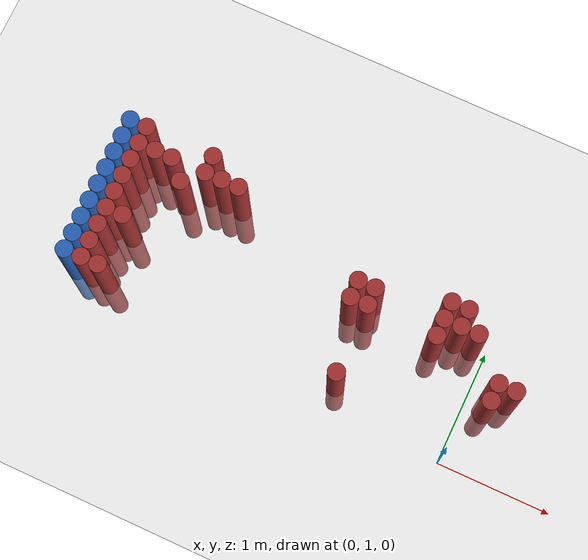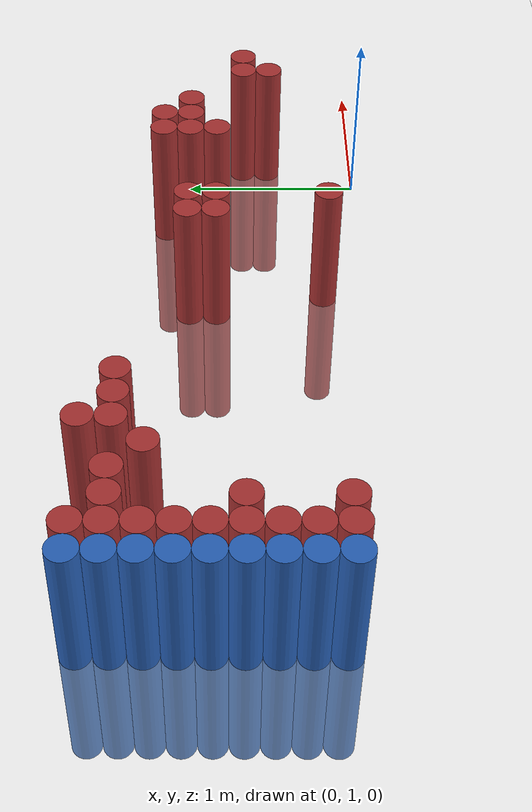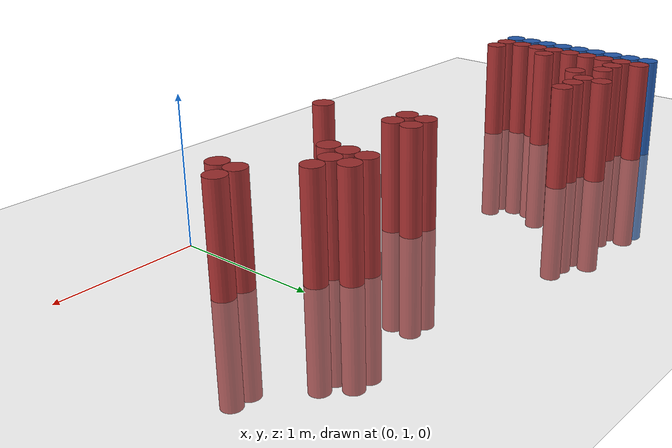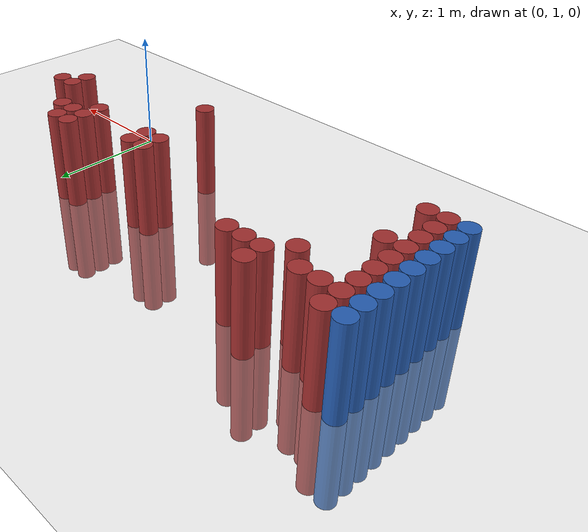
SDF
<sdf version="1.6">
 <world name="default">
  <model name="ground_plane">
   <static>1</static>
   <link name="link">
    <collision name="collision">
     <geometry><plane><normal>0 0 1</normal><size>100 100</size></plane></geometry>
     <surface><friction><ode><mu>100</mu><mu2>50</mu2></ode></friction></surface>
    </collision>
    <visual name="visual">
     <cast_shadows>0</cast_shadows>
     <geometry><plane><normal>0 0 1</normal><size>100 100</size></plane></geometry>
     <material>
      <script><uri>file://media/materials/scripts/gazebo.material</uri><name>Gazebo/Grey</name></script>
     </material>
    </visual>
   </link>
  </model>
  <model name="unit_cylinder_131">
   <static>1</static>
   <pose>-3.425000 1.225000 0.000000 0.000000 0.000000 0.000000</pose>
   <link name="link">
    <inertial>
     <mass>1</mass>
     <inertia><ixx>0.145833</ixx><ixy>0</ixy><ixz>0</ixz><iyy>0.145833</iyy><iyz>0</iyz><izz>0.125</izz></inertia>
    </inertial>
    <collision name="collision">
     <geometry><cylinder><radius>0.075000</radius><length>1.5</length></cylinder></geometry>
    </collision>
    <visual name="visual">
     <geometry><cylinder><radius>0.075000</radius><length>1.5</length></cylinder></geometry>
     <material>
      <ambient>0.152000 0.379000 0.720000 1</ambient>
      <diffuse>0.152000 0.379000 0.720000 1</diffuse>
     </material>
     <material>
      <script><name>Gazebo/Grey</name><uri>file://media/materials/scripts/gazebo.material</uri></script>
     </material>
    </visual>
   </link>
  </model>
  <model name="unit_cylinder_133">
   <static>1</static>
   <pose>-3.425000 1.375000 0.000000 0.000000 0.000000 0.000000</pose>
   <link name="link">
    <inertial>
     <mass>1</mass>
     <inertia><ixx>0.145833</ixx><ixy>0</ixy><ixz>0</ixz><iyy>0.145833</iyy><iyz>0</iyz><izz>0.125</izz></inertia>
    </inertial>
    <collision name="collision">
     <geometry><cylinder><radius>0.075000</radius><length>1.5</length></cylinder></geometry>
    </collision>
    <visual name="visual">
     <geometry><cylinder><radius>0.075000</radius><length>1.5</length></cylinder></geometry>
     <material>
      <ambient>0.152000 0.379000 0.720000 1</ambient>
      <diffuse>0.152000 0.379000 0.720000 1</diffuse>
     </material>
     <material>
      <script><name>Gazebo/Grey</name><uri>file://media/materials/scripts/gazebo.material</uri></script>
     </material>
    </visual>
   </link>
  </model>
  <model name="unit_cylinder_135">
   <static>1</static>
   <pose>-3.425000 1.525000 0.000000 0.000000 0.000000 0.000000</pose>
   <link name="link">
    <inertial>
     <mass>1</mass>
     <inertia><ixx>0.145833</ixx><ixy>0</ixy><ixz>0</ixz><iyy>0.145833</iyy><iyz>0</iyz><izz>0.125</izz></inertia>
    </inertial>
    <collision name="collision">
     <geometry><cylinder><radius>0.075000</radius><length>1.5</length></cylinder></geometry>
    </collision>
    <visual name="visual">
     <geometry><cylinder><radius>0.075000</radius><length>1.5</length></cylinder></geometry>
     <material>
      <ambient>0.152000 0.379000 0.720000 1</ambient>
      <diffuse>0.152000 0.379000 0.720000 1</diffuse>
     </material>
     <material>
      <script><name>Gazebo/Grey</name><uri>file://media/materials/scripts/gazebo.material</uri></script>
     </material>
    </visual>
   </link>
  </model>
  <model name="unit_cylinder_137">
   <static>1</static>
   <pose>-3.425000 1.675000 0.000000 0.000000 0.000000 0.000000</pose>
   <link name="link">
    <inertial>
     <mass>1</mass>
     <inertia><ixx>0.145833</ixx><ixy>0</ixy><ixz>0</ixz><iyy>0.145833</iyy><iyz>0</iyz><izz>0.125</izz></inertia>
    </inertial>
    <collision name="collision">
     <geometry><cylinder><radius>0.075000</radius><length>1.5</length></cylinder></geometry>
    </collision>
    <visual name="visual">
     <geometry><cylinder><radius>0.075000</radius><length>1.5</length></cylinder></geometry>
     <material>
      <ambient>0.152000 0.379000 0.720000 1</ambient>
      <diffuse>0.152000 0.379000 0.720000 1</diffuse>
     </material>
     <material>
      <script><name>Gazebo/Grey</name><uri>file://media/materials/scripts/gazebo.material</uri></script>
     </material>
    </visual>
   </link>
  </model>
  <model name="unit_cylinder_139">
   <static>1</static>
   <pose>-3.425000 1.825000 0.000000 0.000000 0.000000 0.000000</pose>
   <link name="link">
    <inertial>
     <mass>1</mass>
     <inertia><ixx>0.145833</ixx><ixy>0</ixy><ixz>0</ixz><iyy>0.145833</iyy><iyz>0</iyz><izz>0.125</izz></inertia>
    </inertial>
    <collision name="collision">
     <geometry><cylinder><radius>0.075000</radius><length>1.5</length></cylinder></geometry>
    </collision>
    <visual name="visual">
     <geometry><cylinder><radius>0.075000</radius><length>1.5</length></cylinder></geometry>
     <material>
      <ambient>0.152000 0.379000 0.720000 1</ambient>
      <diffuse>0.152000 0.379000 0.720000 1</diffuse>
     </material>
     <material>
      <script><name>Gazebo/Grey</name><uri>file://media/materials/scripts/gazebo.material</uri></script>
     </material>
    </visual>
   </link>
  </model>
  <model name="unit_cylinder_141">
   <static>1</static>
   <pose>-3.425000 1.975000 0.000000 0.000000 0.000000 0.000000</pose>
   <link name="link">
    <inertial>
     <mass>1</mass>
     <inertia><ixx>0.145833</ixx><ixy>0</ixy><ixz>0</ixz><iyy>0.145833</iyy><iyz>0</iyz><izz>0.125</izz></inertia>
    </inertial>
    <collision name="collision">
     <geometry><cylinder><radius>0.075000</radius><length>1.5</length></cylinder></geometry>
    </collision>
    <visual name="visual">
     <geometry><cylinder><radius>0.075000</radius><length>1.5</length></cylinder></geometry>
     <material>
      <ambient>0.152000 0.379000 0.720000 1</ambient>
      <diffuse>0.152000 0.379000 0.720000 1</diffuse>
     </material>
     <material>
      <script><name>Gazebo/Grey</name><uri>file://media/materials/scripts/gazebo.material</uri></script>
     </material>
    </visual>
   </link>
  </model>
  <model name="unit_cylinder_143">
   <static>1</static>
   <pose>-3.425000 2.125000 0.000000 0.000000 0.000000 0.000000</pose>
   <link name="link">
    <inertial>
     <mass>1</mass>
     <inertia><ixx>0.145833</ixx><ixy>0</ixy><ixz>0</ixz><iyy>0.145833</iyy><iyz>0</iyz><izz>0.125</izz></inertia>
    </inertial>
    <collision name="collision">
     <geometry><cylinder><radius>0.075000</radius><length>1.5</length></cylinder></geometry>
    </collision>
    <visual name="visual">
     <geometry><cylinder><radius>0.075000</radius><length>1.5</length></cylinder></geometry>
     <material>
      <ambient>0.152000 0.379000 0.720000 1</ambient>
      <diffuse>0.152000 0.379000 0.720000 1</diffuse>
     </material>
     <material>
      <script><name>Gazebo/Grey</name><uri>file://media/materials/scripts/gazebo.material</uri></script>
     </material>
    </visual>
   </link>
  </model>
  <model name="unit_cylinder_145">
   <static>1</static>
   <pose>-3.425000 2.275000 0.000000 0.000000 0.000000 0.000000</pose>
   <link name="link">
    <inertial>
     <mass>1</mass>
     <inertia><ixx>0.145833</ixx><ixy>0</ixy><ixz>0</ixz><iyy>0.145833</iyy><iyz>0</iyz><izz>0.125</izz></inertia>
    </inertial>
    <collision name="collision">
     <geometry><cylinder><radius>0.075000</radius><length>1.5</length></cylinder></geometry>
    </collision>
    <visual name="visual">
     <geometry><cylinder><radius>0.075000</radius><length>1.5</length></cylinder></geometry>
     <material>
      <ambient>0.152000 0.379000 0.720000 1</ambient>
      <diffuse>0.152000 0.379000 0.720000 1</diffuse>
     </material>
     <material>
      <script><name>Gazebo/Grey</name><uri>file://media/materials/scripts/gazebo.material</uri></script>
     </material>
    </visual>
   </link>
  </model>
  <model name="unit_cylinder_147">
   <static>1</static>
   <pose>-3.425000 2.425000 0.000000 0.000000 0.000000 0.000000</pose>
   <link name="link">
    <inertial>
     <mass>1</mass>
     <inertia><ixx>0.145833</ixx><ixy>0</ixy><ixz>0</ixz><iyy>0.145833</iyy><iyz>0</iyz><izz>0.125</izz></inertia>
    </inertial>
    <collision name="collision">
     <geometry><cylinder><radius>0.075000</radius><length>1.5</length></cylinder></geometry>
    </collision>
    <visual name="visual">
     <geometry><cylinder><radius>0.075000</radius><length>1.5</length></cylinder></geometry>
     <material>
      <ambient>0.152000 0.379000 0.720000 1</ambient>
      <diffuse>0.152000 0.379000 0.720000 1</diffuse>
     </material>
     <material>
      <script><name>Gazebo/Grey</name><uri>file://media/materials/scripts/gazebo.material</uri></script>
     </material>
    </visual>
   </link>
  </model>
  <model name="unit_cylinder_229">
   <static>1</static>
   <pose>-3.425000 1.225000 0.000000 0.000000 0.000000 0.000000</pose>
   <link name="link">
    <inertial>
     <mass>1</mass>
     <inertia><ixx>0.145833</ixx><ixy>0</ixy><ixz>0</ixz><iyy>0.145833</iyy><iyz>0</iyz><izz>0.125</izz></inertia>
    </inertial>
    <collision name="collision">
     <geometry><cylinder><radius>0.075000</radius><length>1.5</length></cylinder></geometry>
    </collision>
    <visual name="visual">
     <geometry><cylinder><radius>0.075000</radius><length>1.5</length></cylinder></geometry>
     <material>
      <ambient>0.152000 0.379000 0.720000 1</ambient>
      <diffuse>0.152000 0.379000 0.720000 1</diffuse>
     </material>
     <material>
      <script><name>Gazebo/Grey</name><uri>file://media/materials/scripts/gazebo.material</uri></script>
     </material>
    </visual>
   </link>
  </model>
  <model name="unit_cylinder_230">
   <static>1</static>
   <pose>-3.425000 1.375000 0.000000 0.000000 0.000000 0.000000</pose>
   <link name="link">
    <inertial>
     <mass>1</mass>
     <inertia><ixx>0.145833</ixx><ixy>0</ixy><ixz>0</ixz><iyy>0.145833</iyy><iyz>0</iyz><izz>0.125</izz></inertia>
    </inertial>
    <collision name="collision">
     <geometry><cylinder><radius>0.075000</radius><length>1.5</length></cylinder></geometry>
    </collision>
    <visual name="visual">
     <geometry><cylinder><radius>0.075000</radius><length>1.5</length></cylinder></geometry>
     <material>
      <ambient>0.152000 0.379000 0.720000 1</ambient>
      <diffuse>0.152000 0.379000 0.720000 1</diffuse>
     </material>
     <material>
      <script><name>Gazebo/Grey</name><uri>file://media/materials/scripts/gazebo.material</uri></script>
     </material>
    </visual>
   </link>
  </model>
  <model name="unit_cylinder_231">
   <static>1</static>
   <pose>-3.425000 1.525000 0.000000 0.000000 0.000000 0.000000</pose>
   <link name="link">
    <inertial>
     <mass>1</mass>
     <inertia><ixx>0.145833</ixx><ixy>0</ixy><ixz>0</ixz><iyy>0.145833</iyy><iyz>0</iyz><izz>0.125</izz></inertia>
    </inertial>
    <collision name="collision">
     <geometry><cylinder><radius>0.075000</radius><length>1.5</length></cylinder></geometry>
    </collision>
    <visual name="visual">
     <geometry><cylinder><radius>0.075000</radius><length>1.5</length></cylinder></geometry>
     <material>
      <ambient>0.152000 0.379000 0.720000 1</ambient>
      <diffuse>0.152000 0.379000 0.720000 1</diffuse>
     </material>
     <material>
      <script><name>Gazebo/Grey</name><uri>file://media/materials/scripts/gazebo.material</uri></script>
     </material>
    </visual>
   </link>
  </model>
  <model name="unit_cylinder_232">
   <static>1</static>
   <pose>-3.425000 1.675000 0.000000 0.000000 0.000000 0.000000</pose>
   <link name="link">
    <inertial>
     <mass>1</mass>
     <inertia><ixx>0.145833</ixx><ixy>0</ixy><ixz>0</ixz><iyy>0.145833</iyy><iyz>0</iyz><izz>0.125</izz></inertia>
    </inertial>
    <collision name="collision">
     <geometry><cylinder><radius>0.075000</radius><length>1.5</length></cylinder></geometry>
    </collision>
    <visual name="visual">
     <geometry><cylinder><radius>0.075000</radius><length>1.5</length></cylinder></geometry>
     <material>
      <ambient>0.152000 0.379000 0.720000 1</ambient>
      <diffuse>0.152000 0.379000 0.720000 1</diffuse>
     </material>
     <material>
      <script><name>Gazebo/Grey</name><uri>file://media/materials/scripts/gazebo.material</uri></script>
     </material>
    </visual>
   </link>
  </model>
  <model name="unit_cylinder_233">
   <static>1</static>
   <pose>-3.425000 1.825000 0.000000 0.000000 0.000000 0.000000</pose>
   <link name="link">
    <inertial>
     <mass>1</mass>
     <inertia><ixx>0.145833</ixx><ixy>0</ixy><ixz>0</ixz><iyy>0.145833</iyy><iyz>0</iyz><izz>0.125</izz></inertia>
    </inertial>
    <collision name="collision">
     <geometry><cylinder><radius>0.075000</radius><length>1.5</length></cylinder></geometry>
    </collision>
    <visual name="visual">
     <geometry><cylinder><radius>0.075000</radius><length>1.5</length></cylinder></geometry>
     <material>
      <ambient>0.152000 0.379000 0.720000 1</ambient>
      <diffuse>0.152000 0.379000 0.720000 1</diffuse>
     </material>
     <material>
      <script><name>Gazebo/Grey</name><uri>file://media/materials/scripts/gazebo.material</uri></script>
     </material>
    </visual>
   </link>
  </model>
  <model name="unit_cylinder_234">
   <static>1</static>
   <pose>-3.425000 1.975000 0.000000 0.000000 0.000000 0.000000</pose>
   <link name="link">
    <inertial>
     <mass>1</mass>
     <inertia><ixx>0.145833</ixx><ixy>0</ixy><ixz>0</ixz><iyy>0.145833</iyy><iyz>0</iyz><izz>0.125</izz></inertia>
    </inertial>
    <collision name="collision">
     <geometry><cylinder><radius>0.075000</radius><length>1.5</length></cylinder></geometry>
    </collision>
    <visual name="visual">
     <geometry><cylinder><radius>0.075000</radius><length>1.5</length></cylinder></geometry>
     <material>
      <ambient>0.152000 0.379000 0.720000 1</ambient>
      <diffuse>0.152000 0.379000 0.720000 1</diffuse>
     </material>
     <material>
      <script><name>Gazebo/Grey</name><uri>file://media/materials/scripts/gazebo.material</uri></script>
     </material>
    </visual>
   </link>
  </model>
  <model name="unit_cylinder_235">
   <static>1</static>
   <pose>-3.425000 2.125000 0.000000 0.000000 0.000000 0.000000</pose>
   <link name="link">
    <inertial>
     <mass>1</mass>
     <inertia><ixx>0.145833</ixx><ixy>0</ixy><ixz>0</ixz><iyy>0.145833</iyy><iyz>0</iyz><izz>0.125</izz></inertia>
    </inertial>
    <collision name="collision">
     <geometry><cylinder><radius>0.075000</radius><length>1.5</length></cylinder></geometry>
    </collision>
    <visual name="visual">
     <geometry><cylinder><radius>0.075000</radius><length>1.5</length></cylinder></geometry>
     <material>
      <ambient>0.152000 0.379000 0.720000 1</ambient>
      <diffuse>0.152000 0.379000 0.720000 1</diffuse>
     </material>
     <material>
      <script><name>Gazebo/Grey</name><uri>file://media/materials/scripts/gazebo.material</uri></script>
     </material>
    </visual>
   </link>
  </model>
  <model name="unit_cylinder_236">
   <static>1</static>
   <pose>-3.425000 2.275000 0.000000 0.000000 0.000000 0.000000</pose>
   <link name="link">
    <inertial>
     <mass>1</mass>
     <inertia><ixx>0.145833</ixx><ixy>0</ixy><ixz>0</ixz><iyy>0.145833</iyy><iyz>0</iyz><izz>0.125</izz></inertia>
    </inertial>
    <collision name="collision">
     <geometry><cylinder><radius>0.075000</radius><length>1.5</length></cylinder></geometry>
    </collision>
    <visual name="visual">
     <geometry><cylinder><radius>0.075000</radius><length>1.5</length></cylinder></geometry>
     <material>
      <ambient>0.152000 0.379000 0.720000 1</ambient>
      <diffuse>0.152000 0.379000 0.720000 1</diffuse>
     </material>
     <material>
      <script><name>Gazebo/Grey</name><uri>file://media/materials/scripts/gazebo.material</uri></script>
     </material>
    </visual>
   </link>
  </model>
  <model name="unit_cylinder_237">
   <static>1</static>
   <pose>-3.425000 2.425000 0.000000 0.000000 0.000000 0.000000</pose>
   <link name="link">
    <inertial>
     <mass>1</mass>
     <inertia><ixx>0.145833</ixx><ixy>0</ixy><ixz>0</ixz><iyy>0.145833</iyy><iyz>0</iyz><izz>0.125</izz></inertia>
    </inertial>
    <collision name="collision">
     <geometry><cylinder><radius>0.075000</radius><length>1.5</length></cylinder></geometry>
    </collision>
    <visual name="visual">
     <geometry><cylinder><radius>0.075000</radius><length>1.5</length></cylinder></geometry>
     <material>
      <ambient>0.152000 0.379000 0.720000 1</ambient>
      <diffuse>0.152000 0.379000 0.720000 1</diffuse>
     </material>
     <material>
      <script><name>Gazebo/Grey</name><uri>file://media/materials/scripts/gazebo.material</uri></script>
     </material>
    </visual>
   </link>
  </model>
  <model name="unit_cylinder_262">
   <static>1</static>
   <pose>-3.275000 1.225000 0.000000 0.000000 0.000000 0.000000</pose>
   <link name="link">
    <inertial>
     <mass>1</mass>
     <inertia><ixx>0.145833</ixx><ixy>0</ixy><ixz>0</ixz><iyy>0.145833</iyy><iyz>0</iyz><izz>0.125</izz></inertia>
    </inertial>
    <collision name="collision">
     <geometry><cylinder><radius>0.075000</radius><length>1.5</length></cylinder></geometry>
    </collision>
    <visual name="visual">
     <geometry><cylinder><radius>0.075000</radius><length>1.5</length></cylinder></geometry>
     <material>
      <ambient>0.648000 0.192000 0.192000 1</ambient>
      <diffuse>0.648000 0.192000 0.192000 1</diffuse>
     </material>
     <material>
      <script><name>Gazebo/Grey</name><uri>file://media/materials/scripts/gazebo.material</uri></script>
     </material>
    </visual>
   </link>
  </model>
  <model name="unit_cylinder_263">
   <static>1</static>
   <pose>-3.275000 1.375000 0.000000 0.000000 0.000000 0.000000</pose>
   <link name="link">
    <inertial>
     <mass>1</mass>
     <inertia><ixx>0.145833</ixx><ixy>0</ixy><ixz>0</ixz><iyy>0.145833</iyy><iyz>0</iyz><izz>0.125</izz></inertia>
    </inertial>
    <collision name="collision">
     <geometry><cylinder><radius>0.075000</radius><length>1.5</length></cylinder></geometry>
    </collision>
    <visual name="visual">
     <geometry><cylinder><radius>0.075000</radius><length>1.5</length></cylinder></geometry>
     <material>
      <ambient>0.648000 0.192000 0.192000 1</ambient>
      <diffuse>0.648000 0.192000 0.192000 1</diffuse>
     </material>
     <material>
      <script><name>Gazebo/Grey</name><uri>file://media/materials/scripts/gazebo.material</uri></script>
     </material>
    </visual>
   </link>
  </model>
  <model name="unit_cylinder_264">
   <static>1</static>
   <pose>-3.275000 1.525000 0.000000 0.000000 0.000000 0.000000</pose>
   <link name="link">
    <inertial>
     <mass>1</mass>
     <inertia><ixx>0.145833</ixx><ixy>0</ixy><ixz>0</ixz><iyy>0.145833</iyy><iyz>0</iyz><izz>0.125</izz></inertia>
    </inertial>
    <collision name="collision">
     <geometry><cylinder><radius>0.075000</radius><length>1.5</length></cylinder></geometry>
    </collision>
    <visual name="visual">
     <geometry><cylinder><radius>0.075000</radius><length>1.5</length></cylinder></geometry>
     <material>
      <ambient>0.648000 0.192000 0.192000 1</ambient>
      <diffuse>0.648000 0.192000 0.192000 1</diffuse>
     </material>
     <material>
      <script><name>Gazebo/Grey</name><uri>file://media/materials/scripts/gazebo.material</uri></script>
     </material>
    </visual>
   </link>
  </model>
  <model name="unit_cylinder_265">
   <static>1</static>
   <pose>-3.275000 1.675000 0.000000 0.000000 0.000000 0.000000</pose>
   <link name="link">
    <inertial>
     <mass>1</mass>
     <inertia><ixx>0.145833</ixx><ixy>0</ixy><ixz>0</ixz><iyy>0.145833</iyy><iyz>0</iyz><izz>0.125</izz></inertia>
    </inertial>
    <collision name="collision">
     <geometry><cylinder><radius>0.075000</radius><length>1.5</length></cylinder></geometry>
    </collision>
    <visual name="visual">
     <geometry><cylinder><radius>0.075000</radius><length>1.5</length></cylinder></geometry>
     <material>
      <ambient>0.648000 0.192000 0.192000 1</ambient>
      <diffuse>0.648000 0.192000 0.192000 1</diffuse>
     </material>
     <material>
      <script><name>Gazebo/Grey</name><uri>file://media/materials/scripts/gazebo.material</uri></script>
     </material>
    </visual>
   </link>
  </model>
  <model name="unit_cylinder_266">
   <static>1</static>
   <pose>-3.275000 1.825000 0.000000 0.000000 0.000000 0.000000</pose>
   <link name="link">
    <inertial>
     <mass>1</mass>
     <inertia><ixx>0.145833</ixx><ixy>0</ixy><ixz>0</ixz><iyy>0.145833</iyy><iyz>0</iyz><izz>0.125</izz></inertia>
    </inertial>
    <collision name="collision">
     <geometry><cylinder><radius>0.075000</radius><length>1.5</length></cylinder></geometry>
    </collision>
    <visual name="visual">
     <geometry><cylinder><radius>0.075000</radius><length>1.5</length></cylinder></geometry>
     <material>
      <ambient>0.648000 0.192000 0.192000 1</ambient>
      <diffuse>0.648000 0.192000 0.192000 1</diffuse>
     </material>
     <material>
      <script><name>Gazebo/Grey</name><uri>file://media/materials/scripts/gazebo.material</uri></script>
     </material>
    </visual>
   </link>
  </model>
  <model name="unit_cylinder_267">
   <static>1</static>
   <pose>-3.275000 1.975000 0.000000 0.000000 0.000000 0.000000</pose>
   <link name="link">
    <inertial>
     <mass>1</mass>
     <inertia><ixx>0.145833</ixx><ixy>0</ixy><ixz>0</ixz><iyy>0.145833</iyy><iyz>0</iyz><izz>0.125</izz></inertia>
    </inertial>
    <collision name="collision">
     <geometry><cylinder><radius>0.075000</radius><length>1.5</length></cylinder></geometry>
    </collision>
    <visual name="visual">
     <geometry><cylinder><radius>0.075000</radius><length>1.5</length></cylinder></geometry>
     <material>
      <ambient>0.648000 0.192000 0.192000 1</ambient>
      <diffuse>0.648000 0.192000 0.192000 1</diffuse>
     </material>
     <material>
      <script><name>Gazebo/Grey</name><uri>file://media/materials/scripts/gazebo.material</uri></script>
     </material>
    </visual>
   </link>
  </model>
  <model name="unit_cylinder_268">
   <static>1</static>
   <pose>-3.275000 2.125000 0.000000 0.000000 0.000000 0.000000</pose>
   <link name="link">
    <inertial>
     <mass>1</mass>
     <inertia><ixx>0.145833</ixx><ixy>0</ixy><ixz>0</ixz><iyy>0.145833</iyy><iyz>0</iyz><izz>0.125</izz></inertia>
    </inertial>
    <collision name="collision">
     <geometry><cylinder><radius>0.075000</radius><length>1.5</length></cylinder></geometry>
    </collision>
    <visual name="visual">
     <geometry><cylinder><radius>0.075000</radius><length>1.5</length></cylinder></geometry>
     <material>
      <ambient>0.648000 0.192000 0.192000 1</ambient>
      <diffuse>0.648000 0.192000 0.192000 1</diffuse>
     </material>
     <material>
      <script><name>Gazebo/Grey</name><uri>file://media/materials/scripts/gazebo.material</uri></script>
     </material>
    </visual>
   </link>
  </model>
  <model name="unit_cylinder_269">
   <static>1</static>
   <pose>-3.275000 2.275000 0.000000 0.000000 0.000000 0.000000</pose>
   <link name="link">
    <inertial>
     <mass>1</mass>
     <inertia><ixx>0.145833</ixx><ixy>0</ixy><ixz>0</ixz><iyy>0.145833</iyy><iyz>0</iyz><izz>0.125</izz></inertia>
    </inertial>
    <collision name="collision">
     <geometry><cylinder><radius>0.075000</radius><length>1.5</length></cylinder></geometry>
    </collision>
    <visual name="visual">
     <geometry><cylinder><radius>0.075000</radius><length>1.5</length></cylinder></geometry>
     <material>
      <ambient>0.648000 0.192000 0.192000 1</ambient>
      <diffuse>0.648000 0.192000 0.192000 1</diffuse>
     </material>
     <material>
      <script><name>Gazebo/Grey</name><uri>file://media/materials/scripts/gazebo.material</uri></script>
     </material>
    </visual>
   </link>
  </model>
  <model name="unit_cylinder_270">
   <static>1</static>
   <pose>-3.275000 2.425000 0.000000 0.000000 0.000000 0.000000</pose>
   <link name="link">
    <inertial>
     <mass>1</mass>
     <inertia><ixx>0.145833</ixx><ixy>0</ixy><ixz>0</ixz><iyy>0.145833</iyy><iyz>0</iyz><izz>0.125</izz></inertia>
    </inertial>
    <collision name="collision">
     <geometry><cylinder><radius>0.075000</radius><length>1.5</length></cylinder></geometry>
    </collision>
    <visual name="visual">
     <geometry><cylinder><radius>0.075000</radius><length>1.5</length></cylinder></geometry>
     <material>
      <ambient>0.648000 0.192000 0.192000 1</ambient>
      <diffuse>0.648000 0.192000 0.192000 1</diffuse>
     </material>
     <material>
      <script><name>Gazebo/Grey</name><uri>file://media/materials/scripts/gazebo.material</uri></script>
     </material>
    </visual>
   </link>
  </model>
  <model name="unit_cylinder_281">
   <static>1</static>
   <pose>-3.125000 1.225000 0.000000 0.000000 0.000000 0.000000</pose>
   <link name="link">
    <inertial>
     <mass>1</mass>
     <inertia><ixx>0.145833</ixx><ixy>0</ixy><ixz>0</ixz><iyy>0.145833</iyy><iyz>0</iyz><izz>0.125</izz></inertia>
    </inertial>
    <collision name="collision">
     <geometry><cylinder><radius>0.075000</radius><length>1.5</length></cylinder></geometry>
    </collision>
    <visual name="visual">
     <geometry><cylinder><radius>0.075000</radius><length>1.5</length></cylinder></geometry>
     <material>
      <ambient>0.648000 0.192000 0.192000 1</ambient>
      <diffuse>0.648000 0.192000 0.192000 1</diffuse>
     </material>
     <material>
      <script><name>Gazebo/Grey</name><uri>file://media/materials/scripts/gazebo.material</uri></script>
     </material>
    </visual>
   </link>
  </model>
  <model name="unit_cylinder_282">
   <static>1</static>
   <pose>-3.125000 1.675000 0.000000 0.000000 0.000000 0.000000</pose>
   <link name="link">
    <inertial>
     <mass>1</mass>
     <inertia><ixx>0.145833</ixx><ixy>0</ixy><ixz>0</ixz><iyy>0.145833</iyy><iyz>0</iyz><izz>0.125</izz></inertia>
    </inertial>
    <collision name="collision">
     <geometry><cylinder><radius>0.075000</radius><length>1.5</length></cylinder></geometry>
    </collision>
    <visual name="visual">
     <geometry><cylinder><radius>0.075000</radius><length>1.5</length></cylinder></geometry>
     <material>
      <ambient>0.648000 0.192000 0.192000 1</ambient>
      <diffuse>0.648000 0.192000 0.192000 1</diffuse>
     </material>
     <material>
      <script><name>Gazebo/Grey</name><uri>file://media/materials/scripts/gazebo.material</uri></script>
     </material>
    </visual>
   </link>
  </model>
  <model name="unit_cylinder_283">
   <static>1</static>
   <pose>-3.125000 2.275000 0.000000 0.000000 0.000000 0.000000</pose>
   <link name="link">
    <inertial>
     <mass>1</mass>
     <inertia><ixx>0.145833</ixx><ixy>0</ixy><ixz>0</ixz><iyy>0.145833</iyy><iyz>0</iyz><izz>0.125</izz></inertia>
    </inertial>
    <collision name="collision">
     <geometry><cylinder><radius>0.075000</radius><length>1.5</length></cylinder></geometry>
    </collision>
    <visual name="visual">
     <geometry><cylinder><radius>0.075000</radius><length>1.5</length></cylinder></geometry>
     <material>
      <ambient>0.648000 0.192000 0.192000 1</ambient>
      <diffuse>0.648000 0.192000 0.192000 1</diffuse>
     </material>
     <material>
      <script><name>Gazebo/Grey</name><uri>file://media/materials/scripts/gazebo.material</uri></script>
     </material>
    </visual>
   </link>
  </model>
  <model name="unit_cylinder_287">
   <static>1</static>
   <pose>-2.975000 2.275000 0.000000 0.000000 0.000000 0.000000</pose>
   <link name="link">
    <inertial>
     <mass>1</mass>
     <inertia><ixx>0.145833</ixx><ixy>0</ixy><ixz>0</ixz><iyy>0.145833</iyy><iyz>0</iyz><izz>0.125</izz></inertia>
    </inertial>
    <collision name="collision">
     <geometry><cylinder><radius>0.075000</radius><length>1.5</length></cylinder></geometry>
    </collision>
    <visual name="visual">
     <geometry><cylinder><radius>0.075000</radius><length>1.5</length></cylinder></geometry>
     <material>
      <ambient>0.648000 0.192000 0.192000 1</ambient>
      <diffuse>0.648000 0.192000 0.192000 1</diffuse>
     </material>
     <material>
      <script><name>Gazebo/Grey</name><uri>file://media/materials/scripts/gazebo.material</uri></script>
     </material>
    </visual>
   </link>
  </model>
  <model name="unit_cylinder_288">
   <static>1</static>
   <pose>-2.825000 2.125000 0.000000 0.000000 0.000000 0.000000</pose>
   <link name="link">
    <inertial>
     <mass>1</mass>
     <inertia><ixx>0.145833</ixx><ixy>0</ixy><ixz>0</ixz><iyy>0.145833</iyy><iyz>0</iyz><izz>0.125</izz></inertia>
    </inertial>
    <collision name="collision">
     <geometry><cylinder><radius>0.075000</radius><length>1.5</length></cylinder></geometry>
    </collision>
    <visual name="visual">
     <geometry><cylinder><radius>0.075000</radius><length>1.5</length></cylinder></geometry>
     <material>
      <ambient>0.648000 0.192000 0.192000 1</ambient>
      <diffuse>0.648000 0.192000 0.192000 1</diffuse>
     </material>
     <material>
      <script><name>Gazebo/Grey</name><uri>file://media/materials/scripts/gazebo.material</uri></script>
     </material>
    </visual>
   </link>
  </model>
  <model name="unit_cylinder_289">
   <static>1</static>
   <pose>-2.675000 2.275000 0.000000 0.000000 0.000000 0.000000</pose>
   <link name="link">
    <inertial>
     <mass>1</mass>
     <inertia><ixx>0.145833</ixx><ixy>0</ixy><ixz>0</ixz><iyy>0.145833</iyy><iyz>0</iyz><izz>0.125</izz></inertia>
    </inertial>
    <collision name="collision">
     <geometry><cylinder><radius>0.075000</radius><length>1.5</length></cylinder></geometry>
    </collision>
    <visual name="visual">
     <geometry><cylinder><radius>0.075000</radius><length>1.5</length></cylinder></geometry>
     <material>
      <ambient>0.648000 0.192000 0.192000 1</ambient>
      <diffuse>0.648000 0.192000 0.192000 1</diffuse>
     </material>
     <material>
      <script><name>Gazebo/Grey</name><uri>file://media/materials/scripts/gazebo.material</uri></script>
     </material>
    </visual>
   </link>
  </model>
  <model name="unit_cylinder_290">
   <static>1</static>
   <pose>-2.675000 2.425000 0.000000 0.000000 0.000000 0.000000</pose>
   <link name="link">
    <inertial>
     <mass>1</mass>
     <inertia><ixx>0.145833</ixx><ixy>0</ixy><ixz>0</ixz><iyy>0.145833</iyy><iyz>0</iyz><izz>0.125</izz></inertia>
    </inertial>
    <collision name="collision">
     <geometry><cylinder><radius>0.075000</radius><length>1.5</length></cylinder></geometry>
    </collision>
    <visual name="visual">
     <geometry><cylinder><radius>0.075000</radius><length>1.5</length></cylinder></geometry>
     <material>
      <ambient>0.648000 0.192000 0.192000 1</ambient>
      <diffuse>0.648000 0.192000 0.192000 1</diffuse>
     </material>
     <material>
      <script><name>Gazebo/Grey</name><uri>file://media/materials/scripts/gazebo.material</uri></script>
     </material>
    </visual>
   </link>
  </model>
  <model name="unit_cylinder_292">
   <static>1</static>
   <pose>-2.525000 2.275000 0.000000 0.000000 0.000000 0.000000</pose>
   <link name="link">
    <inertial>
     <mass>1</mass>
     <inertia><ixx>0.145833</ixx><ixy>0</ixy><ixz>0</ixz><iyy>0.145833</iyy><iyz>0</iyz><izz>0.125</izz></inertia>
    </inertial>
    <collision name="collision">
     <geometry><cylinder><radius>0.075000</radius><length>1.5</length></cylinder></geometry>
    </collision>
    <visual name="visual">
     <geometry><cylinder><radius>0.075000</radius><length>1.5</length></cylinder></geometry>
     <material>
      <ambient>0.648000 0.192000 0.192000 1</ambient>
      <diffuse>0.648000 0.192000 0.192000 1</diffuse>
     </material>
     <material>
      <script><name>Gazebo/Grey</name><uri>file://media/materials/scripts/gazebo.material</uri></script>
     </material>
    </visual>
   </link>
  </model>
  <model name="unit_cylinder_296">
   <static>1</static>
   <pose>-2.375000 2.275000 0.000000 0.000000 0.000000 0.000000</pose>
   <link name="link">
    <inertial>
     <mass>1</mass>
     <inertia><ixx>0.145833</ixx><ixy>0</ixy><ixz>0</ixz><iyy>0.145833</iyy><iyz>0</iyz><izz>0.125</izz></inertia>
    </inertial>
    <collision name="collision">
     <geometry><cylinder><radius>0.075000</radius><length>1.5</length></cylinder></geometry>
    </collision>
    <visual name="visual">
     <geometry><cylinder><radius>0.075000</radius><length>1.5</length></cylinder></geometry>
     <material>
      <ambient>0.648000 0.192000 0.192000 1</ambient>
      <diffuse>0.648000 0.192000 0.192000 1</diffuse>
     </material>
     <material>
      <script><name>Gazebo/Grey</name><uri>file://media/materials/scripts/gazebo.material</uri></script>
     </material>
    </visual>
   </link>
  </model>
  <model name="unit_cylinder_313">
   <static>1</static>
   <pose>-1.175000 1.825000 0.000000 0.000000 0.000000 0.000000</pose>
   <link name="link">
    <inertial>
     <mass>1</mass>
     <inertia><ixx>0.145833</ixx><ixy>0</ixy><ixz>0</ixz><iyy>0.145833</iyy><iyz>0</iyz><izz>0.125</izz></inertia>
    </inertial>
    <collision name="collision">
     <geometry><cylinder><radius>0.075000</radius><length>1.5</length></cylinder></geometry>
    </collision>
    <visual name="visual">
     <geometry><cylinder><radius>0.075000</radius><length>1.5</length></cylinder></geometry>
     <material>
      <ambient>0.648000 0.192000 0.192000 1</ambient>
      <diffuse>0.648000 0.192000 0.192000 1</diffuse>
     </material>
     <material>
      <script><name>Gazebo/Grey</name><uri>file://media/materials/scripts/gazebo.material</uri></script>
     </material>
    </visual>
   </link>
  </model>
  <model name="unit_cylinder_314">
   <static>1</static>
   <pose>-1.175000 1.975000 0.000000 0.000000 0.000000 0.000000</pose>
   <link name="link">
    <inertial>
     <mass>1</mass>
     <inertia><ixx>0.145833</ixx><ixy>0</ixy><ixz>0</ixz><iyy>0.145833</iyy><iyz>0</iyz><izz>0.125</izz></inertia>
    </inertial>
    <collision name="collision">
     <geometry><cylinder><radius>0.075000</radius><length>1.5</length></cylinder></geometry>
    </collision>
    <visual name="visual">
     <geometry><cylinder><radius>0.075000</radius><length>1.5</length></cylinder></geometry>
     <material>
      <ambient>0.648000 0.192000 0.192000 1</ambient>
      <diffuse>0.648000 0.192000 0.192000 1</diffuse>
     </material>
     <material>
      <script><name>Gazebo/Grey</name><uri>file://media/materials/scripts/gazebo.material</uri></script>
     </material>
    </visual>
   </link>
  </model>
  <model name="unit_cylinder_316">
   <static>1</static>
   <pose>-1.025000 1.225000 0.000000 0.000000 0.000000 0.000000</pose>
   <link name="link">
    <inertial>
     <mass>1</mass>
     <inertia><ixx>0.145833</ixx><ixy>0</ixy><ixz>0</ixz><iyy>0.145833</iyy><iyz>0</iyz><izz>0.125</izz></inertia>
    </inertial>
    <collision name="collision">
     <geometry><cylinder><radius>0.075000</radius><length>1.5</length></cylinder></geometry>
    </collision>
    <visual name="visual">
     <geometry><cylinder><radius>0.075000</radius><length>1.5</length></cylinder></geometry>
     <material>
      <ambient>0.648000 0.192000 0.192000 1</ambient>
      <diffuse>0.648000 0.192000 0.192000 1</diffuse>
     </material>
     <material>
      <script><name>Gazebo/Grey</name><uri>file://media/materials/scripts/gazebo.material</uri></script>
     </material>
    </visual>
   </link>
  </model>
  <model name="unit_cylinder_317">
   <static>1</static>
   <pose>-1.025000 1.825000 0.000000 0.000000 0.000000 0.000000</pose>
   <link name="link">
    <inertial>
     <mass>1</mass>
     <inertia><ixx>0.145833</ixx><ixy>0</ixy><ixz>0</ixz><iyy>0.145833</iyy><iyz>0</iyz><izz>0.125</izz></inertia>
    </inertial>
    <collision name="collision">
     <geometry><cylinder><radius>0.075000</radius><length>1.5</length></cylinder></geometry>
    </collision>
    <visual name="visual">
     <geometry><cylinder><radius>0.075000</radius><length>1.5</length></cylinder></geometry>
     <material>
      <ambient>0.648000 0.192000 0.192000 1</ambient>
      <diffuse>0.648000 0.192000 0.192000 1</diffuse>
     </material>
     <material>
      <script><name>Gazebo/Grey</name><uri>file://media/materials/scripts/gazebo.material</uri></script>
     </material>
    </visual>
   </link>
  </model>
  <model name="unit_cylinder_318">
   <static>1</static>
   <pose>-1.025000 1.975000 0.000000 0.000000 0.000000 0.000000</pose>
   <link name="link">
    <inertial>
     <mass>1</mass>
     <inertia><ixx>0.145833</ixx><ixy>0</ixy><ixz>0</ixz><iyy>0.145833</iyy><iyz>0</iyz><izz>0.125</izz></inertia>
    </inertial>
    <collision name="collision">
     <geometry><cylinder><radius>0.075000</radius><length>1.5</length></cylinder></geometry>
    </collision>
    <visual name="visual">
     <geometry><cylinder><radius>0.075000</radius><length>1.5</length></cylinder></geometry>
     <material>
      <ambient>0.648000 0.192000 0.192000 1</ambient>
      <diffuse>0.648000 0.192000 0.192000 1</diffuse>
     </material>
     <material>
      <script><name>Gazebo/Grey</name><uri>file://media/materials/scripts/gazebo.material</uri></script>
     </material>
    </visual>
   </link>
  </model>
  <model name="unit_cylinder_325">
   <static>1</static>
   <pose>-0.425000 1.825000 0.000000 0.000000 0.000000 0.000000</pose>
   <link name="link">
    <inertial>
     <mass>1</mass>
     <inertia><ixx>0.145833</ixx><ixy>0</ixy><ixz>0</ixz><iyy>0.145833</iyy><iyz>0</iyz><izz>0.125</izz></inertia>
    </inertial>
    <collision name="collision">
     <geometry><cylinder><radius>0.075000</radius><length>1.5</length></cylinder></geometry>
    </collision>
    <visual name="visual">
     <geometry><cylinder><radius>0.075000</radius><length>1.5</length></cylinder></geometry>
     <material>
      <ambient>0.648000 0.192000 0.192000 1</ambient>
      <diffuse>0.648000 0.192000 0.192000 1</diffuse>
     </material>
     <material>
      <script><name>Gazebo/Grey</name><uri>file://media/materials/scripts/gazebo.material</uri></script>
     </material>
    </visual>
   </link>
  </model>
  <model name="unit_cylinder_326">
   <static>1</static>
   <pose>-0.425000 1.975000 0.000000 0.000000 0.000000 0.000000</pose>
   <link name="link">
    <inertial>
     <mass>1</mass>
     <inertia><ixx>0.145833</ixx><ixy>0</ixy><ixz>0</ixz><iyy>0.145833</iyy><iyz>0</iyz><izz>0.125</izz></inertia>
    </inertial>
    <collision name="collision">
     <geometry><cylinder><radius>0.075000</radius><length>1.5</length></cylinder></geometry>
    </collision>
    <visual name="visual">
     <geometry><cylinder><radius>0.075000</radius><length>1.5</length></cylinder></geometry>
     <material>
      <ambient>0.648000 0.192000 0.192000 1</ambient>
      <diffuse>0.648000 0.192000 0.192000 1</diffuse>
     </material>
     <material>
      <script><name>Gazebo/Grey</name><uri>file://media/materials/scripts/gazebo.material</uri></script>
     </material>
    </visual>
   </link>
  </model>
  <model name="unit_cylinder_327">
   <static>1</static>
   <pose>-0.425000 2.125000 0.000000 0.000000 0.000000 0.000000</pose>
   <link name="link">
    <inertial>
     <mass>1</mass>
     <inertia><ixx>0.145833</ixx><ixy>0</ixy><ixz>0</ixz><iyy>0.145833</iyy><iyz>0</iyz><izz>0.125</izz></inertia>
    </inertial>
    <collision name="collision">
     <geometry><cylinder><radius>0.075000</radius><length>1.5</length></cylinder></geometry>
    </collision>
    <visual name="visual">
     <geometry><cylinder><radius>0.075000</radius><length>1.5</length></cylinder></geometry>
     <material>
      <ambient>0.648000 0.192000 0.192000 1</ambient>
      <diffuse>0.648000 0.192000 0.192000 1</diffuse>
     </material>
     <material>
      <script><name>Gazebo/Grey</name><uri>file://media/materials/scripts/gazebo.material</uri></script>
     </material>
    </visual>
   </link>
  </model>
  <model name="unit_cylinder_329">
   <static>1</static>
   <pose>-0.275000 1.975000 0.000000 0.000000 0.000000 0.000000</pose>
   <link name="link">
    <inertial>
     <mass>1</mass>
     <inertia><ixx>0.145833</ixx><ixy>0</ixy><ixz>0</ixz><iyy>0.145833</iyy><iyz>0</iyz><izz>0.125</izz></inertia>
    </inertial>
    <collision name="collision">
     <geometry><cylinder><radius>0.075000</radius><length>1.5</length></cylinder></geometry>
    </collision>
    <visual name="visual">
     <geometry><cylinder><radius>0.075000</radius><length>1.5</length></cylinder></geometry>
     <material>
      <ambient>0.648000 0.192000 0.192000 1</ambient>
      <diffuse>0.648000 0.192000 0.192000 1</diffuse>
     </material>
     <material>
      <script><name>Gazebo/Grey</name><uri>file://media/materials/scripts/gazebo.material</uri></script>
     </material>
    </visual>
   </link>
  </model>
  <model name="unit_cylinder_330">
   <static>1</static>
   <pose>-0.275000 2.125000 0.000000 0.000000 0.000000 0.000000</pose>
   <link name="link">
    <inertial>
     <mass>1</mass>
     <inertia><ixx>0.145833</ixx><ixy>0</ixy><ixz>0</ixz><iyy>0.145833</iyy><iyz>0</iyz><izz>0.125</izz></inertia>
    </inertial>
    <collision name="collision">
     <geometry><cylinder><radius>0.075000</radius><length>1.5</length></cylinder></geometry>
    </collision>
    <visual name="visual">
     <geometry><cylinder><radius>0.075000</radius><length>1.5</length></cylinder></geometry>
     <material>
      <ambient>0.648000 0.192000 0.192000 1</ambient>
      <diffuse>0.648000 0.192000 0.192000 1</diffuse>
     </material>
     <material>
      <script><name>Gazebo/Grey</name><uri>file://media/materials/scripts/gazebo.material</uri></script>
     </material>
    </visual>
   </link>
  </model>
  <model name="unit_cylinder_333">
   <static>1</static>
   <pose>-0.125000 1.975000 0.000000 0.000000 0.000000 0.000000</pose>
   <link name="link">
    <inertial>
     <mass>1</mass>
     <inertia><ixx>0.145833</ixx><ixy>0</ixy><ixz>0</ixz><iyy>0.145833</iyy><iyz>0</iyz><izz>0.125</izz></inertia>
    </inertial>
    <collision name="collision">
     <geometry><cylinder><radius>0.075000</radius><length>1.5</length></cylinder></geometry>
    </collision>
    <visual name="visual">
     <geometry><cylinder><radius>0.075000</radius><length>1.5</length></cylinder></geometry>
     <material>
      <ambient>0.648000 0.192000 0.192000 1</ambient>
      <diffuse>0.648000 0.192000 0.192000 1</diffuse>
     </material>
     <material>
      <script><name>Gazebo/Grey</name><uri>file://media/materials/scripts/gazebo.material</uri></script>
     </material>
    </visual>
   </link>
  </model>
  <model name="unit_cylinder_349">
   <static>1</static>
   <pose>0.175000 1.525000 0.000000 0.000000 0.000000 0.000000</pose>
   <link name="link">
    <inertial>
     <mass>1</mass>
     <inertia><ixx>0.145833</ixx><ixy>0</ixy><ixz>0</ixz><iyy>0.145833</iyy><iyz>0</iyz><izz>0.125</izz></inertia>
    </inertial>
    <collision name="collision">
     <geometry><cylinder><radius>0.075000</radius><length>1.5</length></cylinder></geometry>
    </collision>
    <visual name="visual">
     <geometry><cylinder><radius>0.075000</radius><length>1.5</length></cylinder></geometry>
     <material>
      <ambient>0.648000 0.192000 0.192000 1</ambient>
      <diffuse>0.648000 0.192000 0.192000 1</diffuse>
     </material>
     <material>
      <script><name>Gazebo/Grey</name><uri>file://media/materials/scripts/gazebo.material</uri></script>
     </material>
    </visual>
   </link>
  </model>
  <model name="unit_cylinder_350">
   <static>1</static>
   <pose>0.175000 1.675000 0.000000 0.000000 0.000000 0.000000</pose>
   <link name="link">
    <inertial>
     <mass>1</mass>
     <inertia><ixx>0.145833</ixx><ixy>0</ixy><ixz>0</ixz><iyy>0.145833</iyy><iyz>0</iyz><izz>0.125</izz></inertia>
    </inertial>
    <collision name="collision">
     <geometry><cylinder><radius>0.075000</radius><length>1.5</length></cylinder></geometry>
    </collision>
    <visual name="visual">
     <geometry><cylinder><radius>0.075000</radius><length>1.5</length></cylinder></geometry>
     <material>
      <ambient>0.648000 0.192000 0.192000 1</ambient>
      <diffuse>0.648000 0.192000 0.192000 1</diffuse>
     </material>
     <material>
      <script><name>Gazebo/Grey</name><uri>file://media/materials/scripts/gazebo.material</uri></script>
     </material>
    </visual>
   </link>
  </model>
  <model name="unit_cylinder_357">
   <static>1</static>
   <pose>0.325000 1.675000 0.000000 0.000000 0.000000 0.000000</pose>
   <link name="link">
    <inertial>
     <mass>1</mass>
     <inertia><ixx>0.145833</ixx><ixy>0</ixy><ixz>0</ixz><iyy>0.145833</iyy><iyz>0</iyz><izz>0.125</izz></inertia>
    </inertial>
    <collision name="collision">
     <geometry><cylinder><radius>0.075000</radius><length>1.5</length></cylinder></geometry>
    </collision>
    <visual name="visual">
     <geometry><cylinder><radius>0.075000</radius><length>1.5</length></cylinder></geometry>
     <material>
      <ambient>0.648000 0.192000 0.192000 1</ambient>
      <diffuse>0.648000 0.192000 0.192000 1</diffuse>
     </material>
     <material>
      <script><name>Gazebo/Grey</name><uri>file://media/materials/scripts/gazebo.material</uri></script>
     </material>
    </visual>
   </link>
  </model>
 </world>
</sdf>
